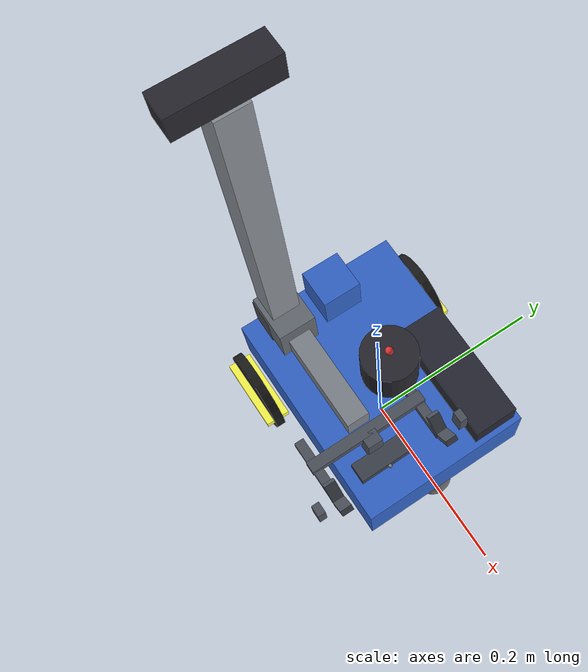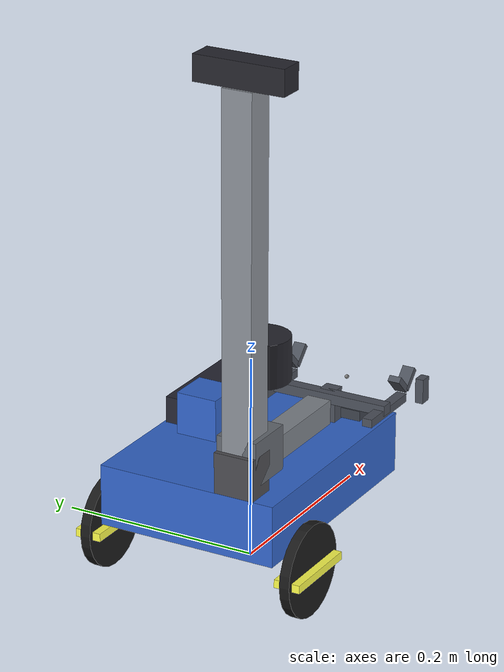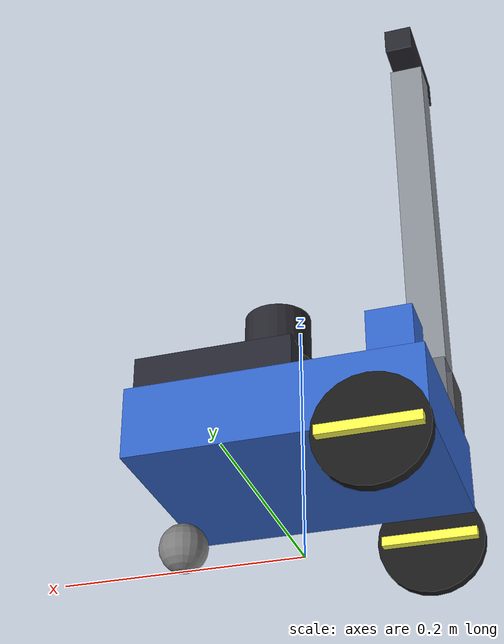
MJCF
<mujoco>
  <!-- world.xml's sibling for the HUB ERA: same bare world (floor + light),
       but carrying the FORK robot (pluggybot_fork.xml) instead of the plug
       robot. room_hub.xml builds on this. -->
  <option integrator="implicitfast"/>

  <include file="pluggybot_fork.xml" />

  <worldbody>
    <light pos="0 0 3" dir="0 0 -1"/>
  </worldbody>
</mujoco>

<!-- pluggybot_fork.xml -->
<mujocoinclude>
  <visual>
    <global offwidth="1280" offheight="720"/>
    <quality offsamples="0"/>
  </visual>

  <worldbody>

    <!-- origin at axle height (aka wheel radius) -->
    <body name="pluggybot" pos="0 0 0.045">
      <freejoint />

      <!-- For the gyroscope  -->
      <site name="imu" pos="0 0 0.05"/>

      <geom
        name="chassis"
        type="box"
        size="0.12 0.09 0.03"
        pos="0 0 0.045"
        mass="0.9"
        rgba="0.2 0.4 0.8 1"
      />

      <geom
        name="battery"
        type="box"
        size="0.065 0.023 0.013"
        pos="0.05 0.06 0.092"
        mass="0.40"
        rgba="0.15 0.15 0.2 1"
      />

      <!--  Head  -->
      <body name="head" pos="-0.08 0 0.135">
        <geom
          name="head_mount"
          type="box"
          size="0.02 0.02 0.02"
          pos="0 0 0"
          mass="0.12"
          rgba="0.2 0.4 0.8 1"
        />

        <!--  Cameras  -->
        <!--  Decoding xyaxes="0 -1 0  0 0 1":
                image-right is body −y, image-up is body +z,
                which forces the viewing direction to be body +x
        -->
        <camera name="left_eye" pos="0.03 0.03 0" xyaxes="0 -1 0 0 0 1" fovy="41"/>

      </body>

      <geom name="lidar_body" type="cylinder" size="0.028 0.022"
            pos="0.02 0 0.150" mass="0.11" rgba="0.15 0.15 0.18 1"/>
      <site name="lidar" pos="0.02 0 0.178" size="0.004"
            rgba="0.9 0.2 0.2 1"/>

      <body name="left_wheel" pos="-0.08 0.105 0">
        <joint
          name="left_wheel_joint"
          type="hinge"
          axis="0 1 0"
          armature="0.012"
          damping="0.05"
          frictionloss="0.05"
        />
        <geom
          name="left_tire"
          type="cylinder"
          size="0.045 0.005"
          zaxis="0 1 0"
          mass="0.05"
          rgba="0.1 0.1 0.1 1"
        />
        <!-- Spoke - purely visual, to see rotation  -->
        <geom
          type="box"
          size="0.04 0.013 0.004"
          mass="0.001"
          contype="0"
          conaffinity="0"
          rgba="1 1 0.3 1"
        />
      </body>

      <body name="right_wheel" pos="-0.08 -0.105 0">
        <joint
          name="right_wheel_joint"
          type="hinge"
          axis="0 1 0"
          armature="0.012"
          damping="0.05"
          frictionloss="0.05"
        />
        <!-- frictionloss: the parking brake -- see left_wheel_joint. -->
        <geom
          name="right_tire"
          type="cylinder"
          size="0.045 0.005"
          zaxis="0 1 0"
          mass="0.05"
          rgba="0.1 0.1 0.1 1"
        />
        <!-- Spoke - purely visual, to see rotation  -->
        <geom
          type="box"
          size="0.04 0.013 0.004"
          mass="0.001"
          contype="0"
          conaffinity="0"
          rgba="1 1 0.3 1"
        />
      </body>

      <geom
        name="caster"
        type="sphere"
        size="0.02"
        pos="0.10 0 -0.025"
        mass="0.02"
        condim="1"
        priority="1"
      />

      <!-- Mast: fixed column + lift motor block at its foot (igus NEMA11
           lead-screw class). Column top at body-local z=0.455. TBD masses. -->
      <geom name="mast" type="box" size="0.015 0.015 0.19"
            pos="-0.10 -0.05 0.265" mass="0.20" rgba="0.55 0.57 0.6 1"/>
      <geom name="lift_motor" type="box" size="0.015 0.02 0.02"
            pos="-0.105 -0.05 0.095" mass="0.15" rgba="0.3 0.3 0.32 1"/>

      <geom name="depth_cam_body" type="box" size="0.0125 0.045 0.0125"
            pos="-0.10 -0.05 0.4675" mass="0.072" rgba="0.15 0.15 0.18 1"/>
      <camera name="depth_eye" pos="-0.086 -0.05 0.4675"
              xyaxes="0 -1 0  0.6428 0 0.7660" fovy="58"/>

      <body name="carriage" pos="-0.10 -0.05 0.10">
        <joint name="lift_joint" type="slide" axis="0 0 1" range="0 0.31"
               damping="10"/>
        <geom name="carriage_block" type="box" size="0.025 0.02 0.022"
              pos="0.01 0 0.008" mass="0.25" rgba="0.4 0.42 0.45 1"/>

        <camera name="dock_eye" pos="0.03 0 0.06" xyaxes="0 -1 0 0 0 1" fovy="41"/>

        <!-- Telescoping arm: short tube, 0.20 m stroke. Retracted, the plug
             tip sits at body-local +0.059 — safely behind the +0.12 bumper. -->
        <body name="arm" pos="0 0 0">
          <joint name="arm_joint" type="slide" axis="1 0 0" range="0 0.20"
                 damping="5"/>
          <geom name="arm_tube" type="box" size="0.06 0.012 0.012"
                pos="0.08 0 0" mass="0.12" rgba="0.5 0.52 0.55 1"/>

          <body name="tool_fork" pos="0.14 0 0.019" euler="0 0 180">
            <joint name="fork_lat_y" type="slide" axis="0 1 0" range="-0.02 0.02"
                   stiffness="150" damping="4" armature="1e-5"/>
            <joint name="fork_lat_z" type="slide" axis="0 0 1" range="-0.02 0.02"
                   stiffness="150" damping="4" armature="1e-5"/>
            <joint name="fork_rot_z" type="hinge" axis="0 0 1" range="-0.35 0.35"
                   stiffness="1.0" damping="0.05" armature="1e-5"/>
            <joint name="fork_rot_y" type="hinge" axis="0 1 0" range="-0.35 0.35"
                   stiffness="1.0" damping="0.05" armature="1e-5"/>
            <geom name="fork_bridge" type="box" size="0.006 0.064 0.005"
                  pos="-0.014 0 -0.010" mass="0.020" rgba="0.30 0.32 0.36 1"/>
            <geom name="fork_prong_l" type="box" size="0.035 0.005 0.004"
                  pos="-0.020 0.058 -0.014" mass="0.008" rgba="0.30 0.32 0.36 1"/>
            <geom name="fork_prong_r" type="box" size="0.035 0.005 0.004"
                  pos="-0.020 -0.058 -0.014" mass="0.008" rgba="0.30 0.32 0.36 1"/>
            <geom name="fork_vl_a" type="box" size="0.011 0.006 0.003"
                  pos="-0.0628 0.058 0.0018" euler="0 45 0" mass="0.002"
                  rgba="0.30 0.32 0.36 1"/>
            <geom name="fork_vl_b" type="box" size="0.011 0.006 0.003"
                  pos="-0.0472 0.058 0.0018" euler="0 -45 0" mass="0.002"
                  rgba="0.30 0.32 0.36 1"/>
            <geom name="fork_vr_a" type="box" size="0.011 0.006 0.003"
                  pos="-0.0628 -0.058 0.0018" euler="0 45 0" mass="0.002"
                  rgba="0.30 0.32 0.36 1"/>
            <geom name="fork_vr_b" type="box" size="0.011 0.006 0.003"
                  pos="-0.0472 -0.058 0.0018" euler="0 -45 0" mass="0.002"
                  rgba="0.30 0.32 0.36 1"/>
            <geom name="fork_stop_l" type="box" size="0.006 0.004 0.012"
                  pos="-0.055 0.079 -0.002" mass="0.004" rgba="0.30 0.32 0.36 1"/>
            <geom name="fork_stop_r" type="box" size="0.006 0.004 0.012"
                  pos="-0.055 -0.079 -0.002" mass="0.004" rgba="0.30 0.32 0.36 1"/>
                 Depth is bounded by the PARKED envelope, not by what the
                 lever would like. Arm retracted, the fork tucks over the
                 chassis, and there is only ~60 mm between the chassis top
                 (0.12) and the scanner's centre row (0.18) -- a first
                 version reaching to z=-0.056 sat its bracket ON the chassis
                 and jacked the whole fork up into the scan row. So the pad
                 stops at z=-0.036 (a ~29 mm lever below the peg) and the
                 bracket routes BEHIND the module rather than under it.

                 29 mm is also near the floor of what works, for a reason
                 worth writing down: the pad force is (tool torque / lever),
                 and it is reacted at the peg, which sits in a 45-degree V.
                 Push the peg horizontally harder than its own weight
                 (1.28 N) and it rides up the flank and out. At a 29 mm
                 lever that caps tool force around 1.5 N -- comfortably past
                 a marker's 0.5-1 N, but this is the number that shrinks if
                 the pad is moved up. -->
            <geom name="lean_pad" type="box" size="0.010 0.028 0.005"
                  pos="-0.0385 0 -0.031" mass="0.012"
                  rgba="0.24 0.26 0.30 1"/>
            <geom name="lean_pad_post" type="box" size="0.007 0.008 0.016"
                  pos="-0.023 0 -0.021" mass="0.008"
                  rgba="0.30 0.32 0.36 1"/>
            <site name="fork_vertex" pos="-0.055 0 -0.006" size="0.002"/>
          </body>
        </body>
      </body>

    </body>
  </worldbody>

  <!-- The arm tube passes beside the mast on a carriage bracket in the real
       igus unit; as primitives on one axis they would interpenetrate. -->
  <contact>
    <exclude body1="pluggybot" body2="arm"/>
  </contact>

  <actuator>
    <velocity
      name="left_motor"
      joint="left_wheel_joint"
      kv="0.5"
      ctrlrange="-21 21"
      forcerange="-2.06 2.06"
    />
    <velocity
      name="right_motor"
      joint="right_wheel_joint"
      kv="0.5"
      ctrlrange="-21 21"
      forcerange="-2.06 2.06"
    />
    <!-- Lift + arm: position servos (a stepper lead-screw IS a position
         device). forcerange from the igus DLE-LA-0001 spec: 50 N thrust.
         ctrl is the joint target in meters. -->
    <position
      name="lift"
      joint="lift_joint"
      kp="1200"
      kv="60"
      ctrlrange="0 0.31"
      forcerange="-50 50"
    />
    <position
      name="arm"
      joint="arm_joint"
      kp="1200"
      kv="60"
      ctrlrange="0 0.20"
      forcerange="-50 50"
    />
  </actuator>

  <sensor>
    <gyro name="imu_gyro" site="imu"/>
  </sensor>

</mujocoinclude>
